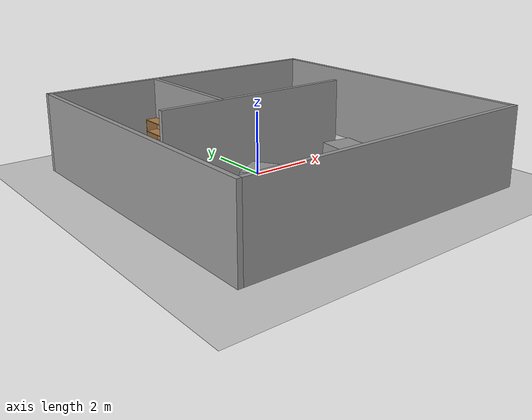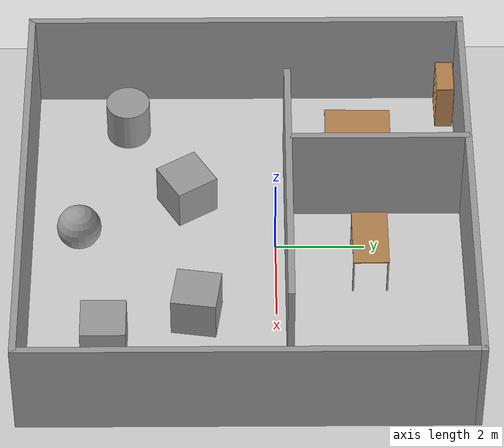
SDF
<sdf version="1.7">
 <world name="default">
  <light name="sun" type="directional">
   <pose>0 0 10 0 -0 0</pose>
   <diffuse>0.8 0.8 0.8 1</diffuse>
   <specular>0.2 0.2 0.2 1</specular>
   <attenuation>
    <range>1000</range>
    <constant>0.9</constant>
    <linear>0.01</linear>
    <quadratic>0.001</quadratic>
   </attenuation>
   <direction>-0.5 0.1 -0.9</direction>
   <spot><inner_angle>0</inner_angle><outer_angle>0</outer_angle><falloff>0</falloff></spot>
  </light>
  <model name="ground_plane">
   <static>1</static>
   <link name="link">
    <collision name="collision">
     <geometry><plane><normal>0 0 1</normal><size>100 100</size></plane></geometry>
     <surface><friction><ode><mu>100</mu><mu2>50</mu2></ode></friction></surface>
    </collision>
    <visual name="visual">
     <cast_shadows>0</cast_shadows>
     <geometry><plane><normal>0 0 1</normal><size>100 100</size></plane></geometry>
     <material>
      <script><uri>file://media/materials/scripts/gazebo.material</uri><name>Gazebo/Grey</name></script>
     </material>
    </visual>
   </link>
  </model>
  <gravity>0 0 -9.8</gravity>
  <magnetic_field>6e-06 2.3e-05 -4.2e-05</magnetic_field>
  <atmosphere type="adiabatic"/>
  <physics type="ode">
   <max_step_size>0.001</max_step_size>
   <real_time_factor>1</real_time_factor>
   <real_time_update_rate>1000</real_time_update_rate>
  </physics>
  <scene><ambient>0.4 0.4 0.4 1</ambient><background>0.7 0.7 0.7 1</background><shadows>1</shadows></scene>
  <audio><device>default</device></audio>
  <spherical_coordinates>
   <surface_model>EARTH_WGS84</surface_model>
   <latitude_deg>0</latitude_deg>
   <longitude_deg>0</longitude_deg>
   <elevation>0</elevation>
   <heading_deg>0</heading_deg>
  </spherical_coordinates>
  <model name="Untitled">
   <pose>0.13101 -0.63779 0 0 -0 0</pose>
   <link name="Wall_15">
    <collision name="Wall_15_Collision">
     <geometry><box><size>4 0.15 2.5</size></box></geometry>
     <pose>0 0 1.25 0 -0 0</pose>
    </collision>
    <visual name="Wall_15_Visual">
     <pose>0 0 1.25 0 -0 0</pose>
     <geometry><box><size>4 0.15 2.5</size></box></geometry>
     <material>
      <script><uri>file://media/materials/scripts/gazebo.material</uri><name>Gazebo/Grey</name></script>
      <ambient>1 1 1 1</ambient>
     </material>
     <meta><layer>0</layer></meta>
    </visual>
    <pose>-1.22552 2.95805 0 0 -0 1.5708</pose>
   </link>
   <link name="Wall_4">
    <collision name="Wall_4_Collision">
     <geometry><box><size>10 0.15 2.5</size></box></geometry>
     <pose>0 0 1.25 0 -0 0</pose>
    </collision>
    <visual name="Wall_4_Visual">
     <pose>0 0 1.25 0 -0 0</pose>
     <geometry><box><size>10 0.15 2.5</size></box></geometry>
     <material>
      <script><uri>file://media/materials/scripts/gazebo.material</uri><name>Gazebo/Grey</name></script>
      <ambient>1 1 1 1</ambient>
     </material>
     <meta><layer>0</layer></meta>
    </visual>
    <pose>-4.925 -0 0 0 -0 -1.5708</pose>
   </link>
   <link name="Wall_5">
    <collision name="Wall_5_Collision">
     <geometry><box><size>10 0.15 2.5</size></box></geometry>
     <pose>0 0 1.25 0 -0 0</pose>
    </collision>
    <visual name="Wall_5_Visual">
     <pose>0 0 1.25 0 -0 0</pose>
     <geometry><box><size>10 0.15 2.5</size></box></geometry>
     <material>
      <script><uri>file://media/materials/scripts/gazebo.material</uri><name>Gazebo/Grey</name></script>
      <ambient>1 1 1 1</ambient>
     </material>
     <meta><layer>0</layer></meta>
    </visual>
    <pose>0 -4.925 0 0 -0 0</pose>
   </link>
   <link name="Wall_6">
    <collision name="Wall_6_Collision">
     <geometry><box><size>10 0.15 2.5</size></box></geometry>
     <pose>0 0 1.25 0 -0 0</pose>
    </collision>
    <visual name="Wall_6_Visual">
     <pose>0 0 1.25 0 -0 0</pose>
     <geometry><box><size>10 0.15 2.5</size></box></geometry>
     <material>
      <script><uri>file://media/materials/scripts/gazebo.material</uri><name>Gazebo/Grey</name></script>
      <ambient>1 1 1 1</ambient>
     </material>
     <meta><layer>0</layer></meta>
    </visual>
    <pose>4.925 -0 0 0 -0 1.5708</pose>
   </link>
   <link name="Wall_7">
    <collision name="Wall_7_Collision">
     <geometry><box><size>10 0.15 2.5</size></box></geometry>
     <pose>0 0 1.25 0 -0 0</pose>
    </collision>
    <visual name="Wall_7_Visual">
     <pose>0 0 1.25 0 -0 0</pose>
     <geometry><box><size>10 0.15 2.5</size></box></geometry>
     <material>
      <script><uri>file://media/materials/scripts/gazebo.material</uri><name>Gazebo/Grey</name></script>
      <ambient>1 1 1 1</ambient>
     </material>
     <meta><layer>0</layer></meta>
    </visual>
    <pose>0 4.925 0 0 -0 3.14159</pose>
   </link>
   <link name="Wall_9">
    <collision name="Wall_9_Collision">
     <geometry><box><size>6.75 0.15 2.5</size></box></geometry>
     <pose>0 0 1.25 0 -0 0</pose>
    </collision>
    <visual name="Wall_9_Visual">
     <pose>0 0 1.25 0 -0 0</pose>
     <geometry><box><size>6.75 0.15 2.5</size></box></geometry>
     <material>
      <script><uri>file://media/materials/scripts/gazebo.material</uri><name>Gazebo/Grey</name></script>
      <ambient>1 1 1 1</ambient>
     </material>
     <meta><layer>0</layer></meta>
    </visual>
    <pose>0.038388 0.924262 0 0 -0 0</pose>
   </link>
   <static>1</static>
  </model>
  <model name="bookshelf">
   <static>1</static>
   <link name="link">
    <inertial><mass>1</mass></inertial>
    <collision name="back">
     <pose>0 0.005 0.6 0 -0 0</pose>
     <geometry><box><size>0.9 0.01 1.2</size></box></geometry>
    </collision>
    <visual name="visual1">
     <pose>0 0.005 0.6 0 -0 0</pose>
     <geometry><box><size>0.9 0.01 1.2</size></box></geometry>
     <material>
      <script><uri>file://media/materials/scripts/gazebo.material</uri><name>Gazebo/Wood</name></script>
     </material>
    </visual>
    <collision name="left_side">
     <pose>0.45 -0.195 0.6 0 -0 0</pose>
     <geometry><box><size>0.02 0.4 1.2</size></box></geometry>
    </collision>
    <visual name="visual2">
     <pose>0.45 -0.195 0.6 0 -0 0</pose>
     <geometry><box><size>0.02 0.4 1.2</size></box></geometry>
     <material>
      <script><uri>file://media/materials/scripts/gazebo.material</uri><name>Gazebo/Wood</name></script>
     </material>
    </visual>
    <collision name="right_side">
     <pose>-0.45 -0.195 0.6 0 -0 0</pose>
     <geometry><box><size>0.02 0.4 1.2</size></box></geometry>
    </collision>
    <visual name="visual3">
     <pose>-0.45 -0.195 0.6 0 -0 0</pose>
     <geometry><box><size>0.02 0.4 1.2</size></box></geometry>
     <material>
      <script><uri>file://media/materials/scripts/gazebo.material</uri><name>Gazebo/Wood</name></script>
     </material>
    </visual>
    <collision name="bottom">
     <pose>0 -0.195 0.03 0 -0 0</pose>
     <geometry><box><size>0.88 0.4 0.06</size></box></geometry>
    </collision>
    <visual name="visual4">
     <pose>0 -0.195 0.03 0 -0 0</pose>
     <geometry><box><size>0.88 0.4 0.06</size></box></geometry>
     <material>
      <script><uri>file://media/materials/scripts/gazebo.material</uri><name>Gazebo/Wood</name></script>
     </material>
    </visual>
    <collision name="top">
     <pose>0 -0.195 1.19 0 -0 0</pose>
     <geometry><box><size>0.88 0.4 0.02</size></box></geometry>
    </collision>
    <visual name="visual5">
     <pose>0 -0.195 1.19 0 -0 0</pose>
     <geometry><box><size>0.88 0.4 0.02</size></box></geometry>
     <material>
      <script><uri>file://media/materials/scripts/gazebo.material</uri><name>Gazebo/Wood</name></script>
     </material>
    </visual>
    <collision name="low_shelf">
     <pose>0 -0.195 0.43 0 -0 0</pose>
     <geometry><box><size>0.88 0.4 0.02</size></box></geometry>
    </collision>
    <visual name="visual6">
     <pose>0 -0.195 0.43 0 -0 0</pose>
     <geometry><box><size>0.88 0.4 0.02</size></box></geometry>
     <material>
      <script><uri>file://media/materials/scripts/gazebo.material</uri><name>Gazebo/Wood</name></script>
     </material>
    </visual>
    <collision name="high_shelf">
     <pose>0 -0.195 0.8 0 -0 0</pose>
     <geometry><box><size>0.88 0.4 0.02</size></box></geometry>
    </collision>
    <visual name="visual7">
     <pose>0 -0.195 0.8 0 -0 0</pose>
     <geometry><box><size>0.88 0.4 0.02</size></box></geometry>
     <material>
      <script><uri>file://media/materials/scripts/gazebo.material</uri><name>Gazebo/Wood</name></script>
     </material>
    </visual>
   </link>
   <pose>-4.24185 4.17663 0 0 -0 0</pose>
  </model>
  <model name="bookshelf_0">
   <static>1</static>
   <link name="link">
    <inertial><mass>1</mass></inertial>
    <collision name="back">
     <pose>0 0.005 0.6 0 -0 0</pose>
     <geometry><box><size>0.9 0.01 1.2</size></box></geometry>
    </collision>
    <visual name="visual1">
     <pose>0 0.005 0.6 0 -0 0</pose>
     <geometry><box><size>0.9 0.01 1.2</size></box></geometry>
     <material>
      <script><uri>file://media/materials/scripts/gazebo.material</uri><name>Gazebo/Wood</name></script>
     </material>
    </visual>
    <collision name="left_side">
     <pose>0.45 -0.195 0.6 0 -0 0</pose>
     <geometry><box><size>0.02 0.4 1.2</size></box></geometry>
    </collision>
    <visual name="visual2">
     <pose>0.45 -0.195 0.6 0 -0 0</pose>
     <geometry><box><size>0.02 0.4 1.2</size></box></geometry>
     <material>
      <script><uri>file://media/materials/scripts/gazebo.material</uri><name>Gazebo/Wood</name></script>
     </material>
    </visual>
    <collision name="right_side">
     <pose>-0.45 -0.195 0.6 0 -0 0</pose>
     <geometry><box><size>0.02 0.4 1.2</size></box></geometry>
    </collision>
    <visual name="visual3">
     <pose>-0.45 -0.195 0.6 0 -0 0</pose>
     <geometry><box><size>0.02 0.4 1.2</size></box></geometry>
     <material>
      <script><uri>file://media/materials/scripts/gazebo.material</uri><name>Gazebo/Wood</name></script>
     </material>
    </visual>
    <collision name="bottom">
     <pose>0 -0.195 0.03 0 -0 0</pose>
     <geometry><box><size>0.88 0.4 0.06</size></box></geometry>
    </collision>
    <visual name="visual4">
     <pose>0 -0.195 0.03 0 -0 0</pose>
     <geometry><box><size>0.88 0.4 0.06</size></box></geometry>
     <material>
      <script><uri>file://media/materials/scripts/gazebo.material</uri><name>Gazebo/Wood</name></script>
     </material>
    </visual>
    <collision name="top">
     <pose>0 -0.195 1.19 0 -0 0</pose>
     <geometry><box><size>0.88 0.4 0.02</size></box></geometry>
    </collision>
    <visual name="visual5">
     <pose>0 -0.195 1.19 0 -0 0</pose>
     <geometry><box><size>0.88 0.4 0.02</size></box></geometry>
     <material>
      <script><uri>file://media/materials/scripts/gazebo.material</uri><name>Gazebo/Wood</name></script>
     </material>
    </visual>
    <collision name="low_shelf">
     <pose>0 -0.195 0.43 0 -0 0</pose>
     <geometry><box><size>0.88 0.4 0.02</size></box></geometry>
    </collision>
    <visual name="visual6">
     <pose>0 -0.195 0.43 0 -0 0</pose>
     <geometry><box><size>0.88 0.4 0.02</size></box></geometry>
     <material>
      <script><uri>file://media/materials/scripts/gazebo.material</uri><name>Gazebo/Wood</name></script>
     </material>
    </visual>
    <collision name="high_shelf">
     <pose>0 -0.195 0.8 0 -0 0</pose>
     <geometry><box><size>0.88 0.4 0.02</size></box></geometry>
    </collision>
    <visual name="visual7">
     <pose>0 -0.195 0.8 0 -0 0</pose>
     <geometry><box><size>0.88 0.4 0.02</size></box></geometry>
     <material>
      <script><uri>file://media/materials/scripts/gazebo.material</uri><name>Gazebo/Wood</name></script>
     </material>
    </visual>
   </link>
   <pose>-1.24674 3.58294 0 0 0 -1.56891</pose>
  </model>
  <model name="table">
   <static>1</static>
   <link name="link">
    <collision name="surface">
     <pose>0 0 1 0 -0 0</pose>
     <geometry><box><size>1.5 0.8 0.03</size></box></geometry>
     <surface><friction><ode><mu>0.6</mu><mu2>0.6</mu2></ode></friction></surface>
    </collision>
    <visual name="visual1">
     <pose>0 0 1 0 -0 0</pose>
     <geometry><box><size>1.5 0.8 0.03</size></box></geometry>
     <material>
      <script><uri>file://media/materials/scripts/gazebo.material</uri><name>Gazebo/Wood</name></script>
     </material>
    </visual>
    <collision name="front_left_leg">
     <pose>0.68 0.38 0.5 0 -0 0</pose>
     <geometry><cylinder><radius>0.02</radius><length>1</length></cylinder></geometry>
    </collision>
    <visual name="front_left_leg">
     <pose>0.68 0.38 0.5 0 -0 0</pose>
     <geometry><cylinder><radius>0.02</radius><length>1</length></cylinder></geometry>
     <material>
      <script><uri>file://media/materials/scripts/gazebo.material</uri><name>Gazebo/Grey</name></script>
     </material>
    </visual>
    <collision name="front_right_leg">
     <pose>0.68 -0.38 0.5 0 -0 0</pose>
     <geometry><cylinder><radius>0.02</radius><length>1</length></cylinder></geometry>
    </collision>
    <visual name="front_right_leg">
     <pose>0.68 -0.38 0.5 0 -0 0</pose>
     <geometry><cylinder><radius>0.02</radius><length>1</length></cylinder></geometry>
     <material>
      <script><uri>file://media/materials/scripts/gazebo.material</uri><name>Gazebo/Grey</name></script>
     </material>
    </visual>
    <collision name="back_right_leg">
     <pose>-0.68 -0.38 0.5 0 -0 0</pose>
     <geometry><cylinder><radius>0.02</radius><length>1</length></cylinder></geometry>
    </collision>
    <visual name="back_right_leg">
     <pose>-0.68 -0.38 0.5 0 -0 0</pose>
     <geometry><cylinder><radius>0.02</radius><length>1</length></cylinder></geometry>
     <material>
      <script><uri>file://media/materials/scripts/gazebo.material</uri><name>Gazebo/Grey</name></script>
     </material>
    </visual>
    <collision name="back_left_leg">
     <pose>-0.68 0.38 0.5 0 -0 0</pose>
     <geometry><cylinder><radius>0.02</radius><length>1</length></cylinder></geometry>
    </collision>
    <visual name="back_left_leg">
     <pose>-0.68 0.38 0.5 0 -0 0</pose>
     <geometry><cylinder><radius>0.02</radius><length>1</length></cylinder></geometry>
     <material>
      <script><uri>file://media/materials/scripts/gazebo.material</uri><name>Gazebo/Grey</name></script>
     </material>
    </visual>
   </link>
   <pose>0.617348 2.09264 0 0 -0 0</pose>
  </model>
  <model name="unit_box">
   <pose>2.91629 -3.78455 0.5 0 -0 9.5e-05</pose>
   <link name="link">
    <inertial>
     <mass>1</mass>
     <inertia>
      <ixx>0.166667</ixx>
      <ixy>0</ixy>
      <ixz>0</ixz>
      <iyy>0.166667</iyy>
      <iyz>0</iyz>
      <izz>0.166667</izz>
     </inertia>
    </inertial>
    <collision name="collision"><geometry><box><size>1 1 1</size></box></geometry></collision>
    <visual name="visual">
     <geometry><box><size>1 1 1</size></box></geometry>
     <material>
      <script><name>Gazebo/Grey</name><uri>file://media/materials/scripts/gazebo.material</uri></script>
     </material>
    </visual>
   </link>
  </model>
  <model name="unit_box_0">
   <pose>-1.34682 -2.00319 0.5 0 -0 0.552498</pose>
   <link name="link">
    <inertial>
     <mass>1</mass>
     <inertia>
      <ixx>0.166667</ixx>
      <ixy>0</ixy>
      <ixz>0</ixz>
      <iyy>0.166667</iyy>
      <iyz>0</iyz>
      <izz>0.166667</izz>
     </inertia>
    </inertial>
    <collision name="collision"><geometry><box><size>1 1 1</size></box></geometry></collision>
    <visual name="visual">
     <geometry><box><size>1 1 1</size></box></geometry>
     <material>
      <script><name>Gazebo/Grey</name><uri>file://media/materials/scripts/gazebo.material</uri></script>
     </material>
    </visual>
   </link>
  </model>
  <model name="unit_sphere">
   <pose>-0.193141 -4.41666 0.5 0 -0 0</pose>
   <link name="link">
    <inertial>
     <mass>1</mass>
     <inertia><ixx>0.1</ixx><ixy>0</ixy><ixz>0</ixz><iyy>0.1</iyy><iyz>0</iyz><izz>0.1</izz></inertia>
    </inertial>
    <collision name="collision"><geometry><sphere><radius>0.5</radius></sphere></geometry></collision>
    <visual name="visual">
     <geometry><sphere><radius>0.5</radius></sphere></geometry>
     <material>
      <script><name>Gazebo/Grey</name><uri>file://media/materials/scripts/gazebo.material</uri></script>
     </material>
    </visual>
   </link>
  </model>
  <model name="unit_cylinder">
   <pose>-3.60581 -3.37903 0.499995 4e-06 2e-06 -0.429858</pose>
   <link name="link">
    <inertial>
     <mass>1</mass>
     <inertia><ixx>0.145833</ixx><ixy>0</ixy><ixz>0</ixz><iyy>0.145833</iyy><iyz>0</iyz><izz>0.125</izz></inertia>
    </inertial>
    <collision name="collision">
     <geometry><cylinder><radius>0.5</radius><length>1</length></cylinder></geometry>
    </collision>
    <visual name="visual">
     <geometry><cylinder><radius>0.5</radius><length>1</length></cylinder></geometry>
     <material>
      <script><name>Gazebo/Grey</name><uri>file://media/materials/scripts/gazebo.material</uri></script>
     </material>
    </visual>
   </link>
  </model>
  <model name="unit_box_1">
   <pose>2.07627 -1.76307 0.499994 0 -1.1e-05 -0.141525</pose>
   <link name="link">
    <inertial>
     <mass>1</mass>
     <inertia>
      <ixx>0.166667</ixx>
      <ixy>0</ixy>
      <ixz>0</ixz>
      <iyy>0.166667</iyy>
      <iyz>0</iyz>
      <izz>0.166667</izz>
     </inertia>
    </inertial>
    <collision name="collision"><geometry><box><size>1 1 1</size></box></geometry></collision>
    <visual name="visual">
     <geometry><box><size>1 1 1</size></box></geometry>
     <material>
      <script><name>Gazebo/Grey</name><uri>file://media/materials/scripts/gazebo.material</uri></script>
     </material>
    </visual>
   </link>
  </model>
  <model name="table_0">
   <static>1</static>
   <link name="link">
    <collision name="surface">
     <pose>0 0 1 0 -0 0</pose>
     <geometry><box><size>1.5 0.8 0.03</size></box></geometry>
     <surface><friction><ode><mu>0.6</mu><mu2>0.6</mu2></ode></friction></surface>
    </collision>
    <visual name="visual1">
     <pose>0 0 1 0 -0 0</pose>
     <geometry><box><size>1.5 0.8 0.03</size></box></geometry>
     <material>
      <script><uri>file://media/materials/scripts/gazebo.material</uri><name>Gazebo/Wood</name></script>
     </material>
    </visual>
    <collision name="front_left_leg">
     <pose>0.68 0.38 0.5 0 -0 0</pose>
     <geometry><cylinder><radius>0.02</radius><length>1</length></cylinder></geometry>
    </collision>
    <visual name="front_left_leg">
     <pose>0.68 0.38 0.5 0 -0 0</pose>
     <geometry><cylinder><radius>0.02</radius><length>1</length></cylinder></geometry>
     <material>
      <script><uri>file://media/materials/scripts/gazebo.material</uri><name>Gazebo/Grey</name></script>
     </material>
    </visual>
    <collision name="front_right_leg">
     <pose>0.68 -0.38 0.5 0 -0 0</pose>
     <geometry><cylinder><radius>0.02</radius><length>1</length></cylinder></geometry>
    </collision>
    <visual name="front_right_leg">
     <pose>0.68 -0.38 0.5 0 -0 0</pose>
     <geometry><cylinder><radius>0.02</radius><length>1</length></cylinder></geometry>
     <material>
      <script><uri>file://media/materials/scripts/gazebo.material</uri><name>Gazebo/Grey</name></script>
     </material>
    </visual>
    <collision name="back_right_leg">
     <pose>-0.68 -0.38 0.5 0 -0 0</pose>
     <geometry><cylinder><radius>0.02</radius><length>1</length></cylinder></geometry>
    </collision>
    <visual name="back_right_leg">
     <pose>-0.68 -0.38 0.5 0 -0 0</pose>
     <geometry><cylinder><radius>0.02</radius><length>1</length></cylinder></geometry>
     <material>
      <script><uri>file://media/materials/scripts/gazebo.material</uri><name>Gazebo/Grey</name></script>
     </material>
    </visual>
    <collision name="back_left_leg">
     <pose>-0.68 0.38 0.5 0 -0 0</pose>
     <geometry><cylinder><radius>0.02</radius><length>1</length></cylinder></geometry>
    </collision>
    <visual name="back_left_leg">
     <pose>-0.68 0.38 0.5 0 -0 0</pose>
     <geometry><cylinder><radius>0.02</radius><length>1</length></cylinder></geometry>
     <material>
      <script><uri>file://media/materials/scripts/gazebo.material</uri><name>Gazebo/Grey</name></script>
     </material>
    </visual>
   </link>
   <pose>-2.92941 1.91028 0 0 0 -1.58437</pose>
  </model>
 </world>
</sdf>
